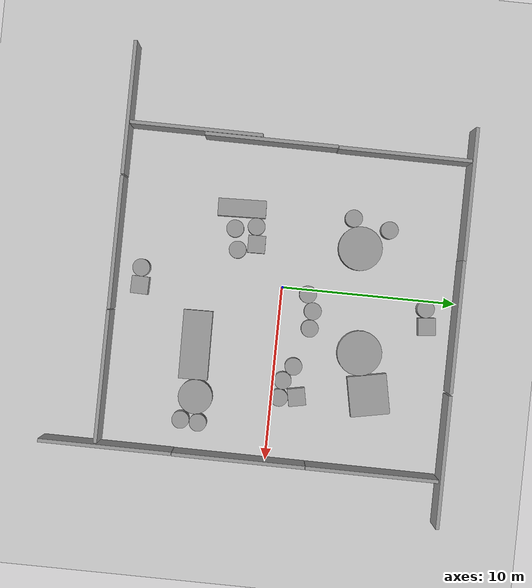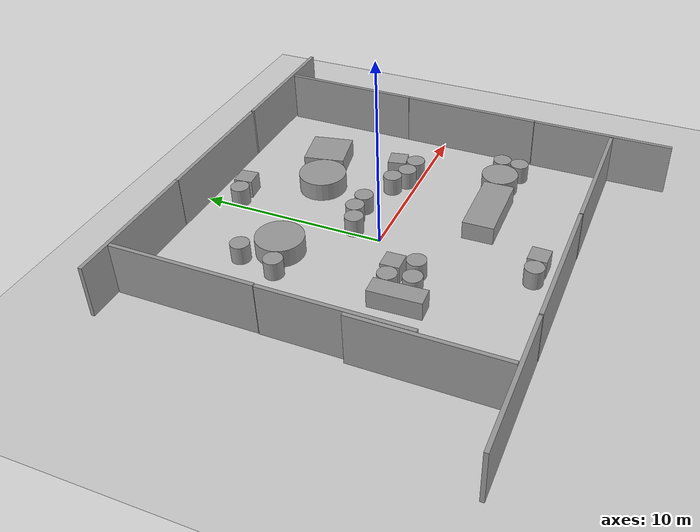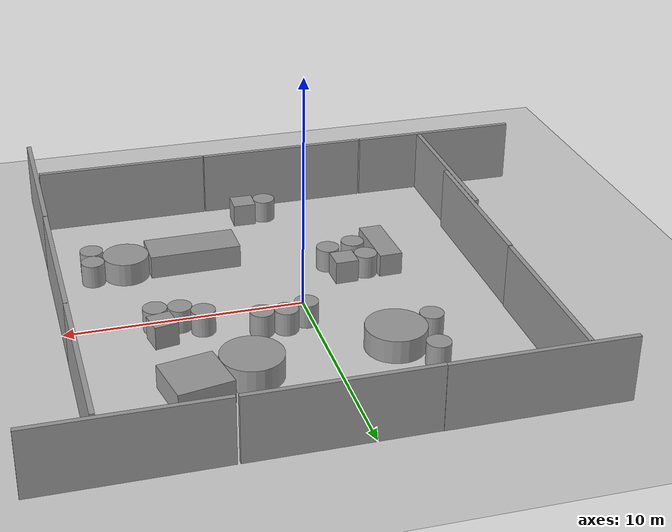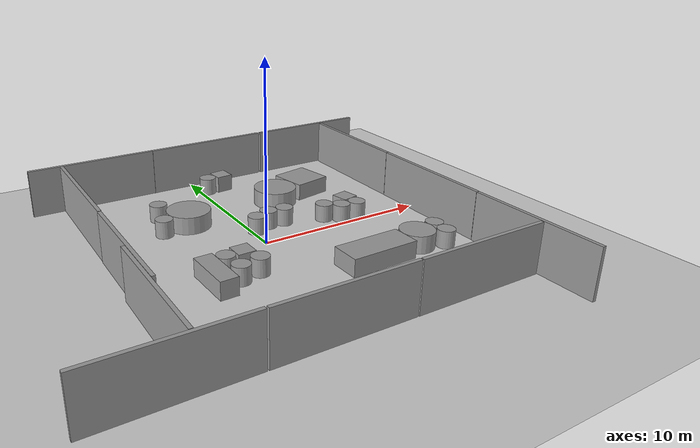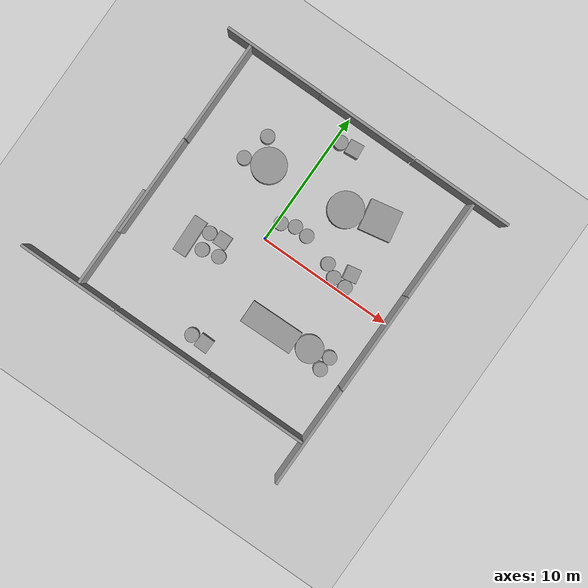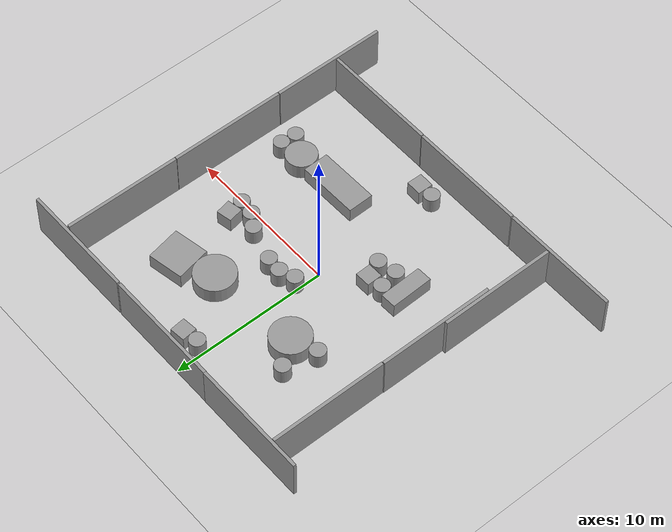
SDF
<sdf version="1.6">
 <world name="default">
  <light name="sun" type="directional">
   <pose>0 0 10 0 -0 0</pose>
   <diffuse>0.8 0.8 0.8 1</diffuse>
   <specular>0.2 0.2 0.2 1</specular>
   <attenuation>
    <range>1000</range>
    <constant>0.9</constant>
    <linear>0.01</linear>
    <quadratic>0.001</quadratic>
   </attenuation>
   <direction>-0.5 0.1 -0.9</direction>
  </light>
  <model name="ground_plane">
   <static>1</static>
   <link name="link">
    <collision name="collision">
     <geometry><plane><normal>0 0 1</normal><size>100 100</size></plane></geometry>
     <surface><friction><ode><mu>100</mu><mu2>50</mu2></ode></friction></surface>
    </collision>
    <visual name="visual">
     <cast_shadows>0</cast_shadows>
     <geometry><plane><normal>0 0 1</normal><size>100 100</size></plane></geometry>
     <material>
      <script><uri>file://media/materials/scripts/gazebo.material</uri><name>Gazebo/Grey</name></script>
     </material>
    </visual>
   </link>
  </model>
  <gravity>0 0 -9.8</gravity>
  <magnetic_field>6e-06 2.3e-05 -4.2e-05</magnetic_field>
  <atmosphere type="adiabatic"/>
  <physics name="default_physics" default="0" type="ode">
   <max_step_size>0.001</max_step_size>
   <real_time_factor>1</real_time_factor>
   <real_time_update_rate>1000</real_time_update_rate>
  </physics>
  <scene><ambient>0.4 0.4 0.4 1</ambient><background>0.7 0.7 0.7 1</background><shadows>1</shadows></scene>
  <spherical_coordinates>
   <surface_model>EARTH_WGS84</surface_model>
   <latitude_deg>0</latitude_deg>
   <longitude_deg>0</longitude_deg>
   <elevation>0</elevation>
   <heading_deg>0</heading_deg>
  </spherical_coordinates>
  <model name="unit_box">
   <pose>5.65714 5.5143 0.499995 4e-06 -0 0.19035</pose>
   <link name="link">
    <inertial>
     <mass>1</mass>
     <inertia>
      <ixx>0.166667</ixx>
      <ixy>0</ixy>
      <ixz>0</ixz>
      <iyy>0.166667</iyy>
      <iyz>0</iyz>
      <izz>0.166667</izz>
     </inertia>
    </inertial>
    <collision name="collision"><geometry><box><size>2.30373 2.24757 1</size></box></geometry></collision>
    <visual name="visual">
     <geometry><box><size>2.30373 2.24757 1</size></box></geometry>
     <material>
      <script><name>Gazebo/Grey</name><uri>file://media/materials/scripts/gazebo.material</uri></script>
     </material>
    </visual>
   </link>
  </model>
  <model name="unit_cylinder">
   <pose>3.31537 4.76057 0.5 0 -0 -0.12174</pose>
   <link name="link">
    <inertial>
     <mass>1</mass>
     <inertia><ixx>0.145833</ixx><ixy>0</ixy><ixz>0</ixz><iyy>0.145833</iyy><iyz>0</iyz><izz>0.125</izz></inertia>
    </inertial>
    <collision name="collision">
     <geometry><cylinder><radius>1.28777</radius><length>1</length></cylinder></geometry>
    </collision>
    <visual name="visual">
     <geometry><cylinder><radius>1.28777</radius><length>1</length></cylinder></geometry>
     <material>
      <script><name>Gazebo/Grey</name><uri>file://media/materials/scripts/gazebo.material</uri></script>
     </material>
    </visual>
   </link>
  </model>
  <model name="unit_cylinder_0">
   <pose>8.18054 -4.03594 0.499992 -3e-06 2e-06 -0.051788</pose>
   <link name="link">
    <inertial>
     <mass>1</mass>
     <inertia><ixx>0.145833</ixx><ixy>0</ixy><ixz>0</ixz><iyy>0.145833</iyy><iyz>0</iyz><izz>0.125</izz></inertia>
    </inertial>
    <collision name="collision">
     <geometry><cylinder><radius>0.5</radius><length>1</length></cylinder></geometry>
    </collision>
    <visual name="visual">
     <geometry><cylinder><radius>0.5</radius><length>1</length></cylinder></geometry>
     <material>
      <script><name>Gazebo/Grey</name><uri>file://media/materials/scripts/gazebo.material</uri></script>
     </material>
    </visual>
   </link>
  </model>
  <model name="unit_cylinder_1">
   <pose>8.107 -5.03946 0.499993 -3e-06 0 -0.231607</pose>
   <link name="link">
    <inertial>
     <mass>1</mass>
     <inertia><ixx>0.145833</ixx><ixy>0</ixy><ixz>0</ixz><iyy>0.145833</iyy><iyz>0</iyz><izz>0.125</izz></inertia>
    </inertial>
    <collision name="collision">
     <geometry><cylinder><radius>0.5</radius><length>1</length></cylinder></geometry>
    </collision>
    <visual name="visual">
     <geometry><cylinder><radius>0.5</radius><length>1</length></cylinder></geometry>
     <material>
      <script><name>Gazebo/Grey</name><uri>file://media/materials/scripts/gazebo.material</uri></script>
     </material>
    </visual>
   </link>
  </model>
  <model name="unit_cylinder_2">
   <pose>6.72401 -4.32637 0.499994 6e-06 -7e-06 0.058713</pose>
   <link name="link">
    <inertial>
     <mass>1</mass>
     <inertia><ixx>0.145833</ixx><ixy>0</ixy><ixz>0</ixz><iyy>0.145833</iyy><iyz>0</iyz><izz>0.125</izz></inertia>
    </inertial>
    <collision name="collision">
     <geometry><cylinder><radius>0.98505</radius><length>1</length></cylinder></geometry>
    </collision>
    <visual name="visual">
     <geometry><cylinder><radius>0.98505</radius><length>1</length></cylinder></geometry>
     <material>
      <script><name>Gazebo/Grey</name><uri>file://media/materials/scripts/gazebo.material</uri></script>
     </material>
    </visual>
   </link>
  </model>
  <model name="unit_box_0">
   <pose>3.7691 -4.60129 0.499996 -5e-06 -0 0.016981</pose>
   <link name="link">
    <inertial>
     <mass>1</mass>
     <inertia>
      <ixx>0.166667</ixx>
      <ixy>0</ixy>
      <ixz>0</ixz>
      <iyy>0.166667</iyy>
      <iyz>0</iyz>
      <izz>0.166667</izz>
     </inertia>
    </inertial>
    <collision name="collision"><geometry><box><size>3.94577 1.66108 1</size></box></geometry></collision>
    <visual name="visual">
     <geometry><box><size>3.94577 1.66108 1</size></box></geometry>
     <material>
      <script><name>Gazebo/Grey</name><uri>file://media/materials/scripts/gazebo.material</uri></script>
     </material>
    </visual>
   </link>
  </model>
  <model name="unit_cylinder_3">
   <pose>4.44991 1.08679 0.499997 3e-06 2e-06 -0.080474</pose>
   <link name="link">
    <inertial>
     <mass>1</mass>
     <inertia><ixx>0.145833</ixx><ixy>0</ixy><ixz>0</ixz><iyy>0.145833</iyy><iyz>0</iyz><izz>0.125</izz></inertia>
    </inertial>
    <collision name="collision">
     <geometry><cylinder><radius>0.5</radius><length>1</length></cylinder></geometry>
    </collision>
    <visual name="visual">
     <geometry><cylinder><radius>0.5</radius><length>1</length></cylinder></geometry>
     <material>
      <script><name>Gazebo/Grey</name><uri>file://media/materials/scripts/gazebo.material</uri></script>
     </material>
    </visual>
   </link>
  </model>
  <model name="unit_cylinder_4">
   <pose>5.30289 0.552838 0.499992 -3e-06 1e-06 -0.21972</pose>
   <link name="link">
    <inertial>
     <mass>1</mass>
     <inertia><ixx>0.145833</ixx><ixy>0</ixy><ixz>0</ixz><iyy>0.145833</iyy><iyz>0</iyz><izz>0.125</izz></inertia>
    </inertial>
    <collision name="collision">
     <geometry><cylinder><radius>0.5</radius><length>1</length></cylinder></geometry>
    </collision>
    <visual name="visual">
     <geometry><cylinder><radius>0.5</radius><length>1</length></cylinder></geometry>
     <material>
      <script><name>Gazebo/Grey</name><uri>file://media/materials/scripts/gazebo.material</uri></script>
     </material>
    </visual>
   </link>
  </model>
  <model name="unit_cylinder_5">
   <pose>-2.63697 4.22043 0.5 0 -0 0.092075</pose>
   <link name="link">
    <inertial>
     <mass>1</mass>
     <inertia><ixx>0.145833</ixx><ixy>0</ixy><ixz>0</ixz><iyy>0.145833</iyy><iyz>0</iyz><izz>0.125</izz></inertia>
    </inertial>
    <collision name="collision">
     <geometry><cylinder><radius>1.26239</radius><length>1</length></cylinder></geometry>
    </collision>
    <visual name="visual">
     <geometry><cylinder><radius>1.26239</radius><length>1</length></cylinder></geometry>
     <material>
      <script><name>Gazebo/Grey</name><uri>file://media/materials/scripts/gazebo.material</uri></script>
     </material>
    </visual>
   </link>
  </model>
  <model name="unit_cylinder_6">
   <pose>-4.31548 3.68272 0.499992 -2e-06 -5e-06 -0.314851</pose>
   <link name="link">
    <inertial>
     <mass>1</mass>
     <inertia><ixx>0.145833</ixx><ixy>0</ixy><ixz>0</ixz><iyy>0.145833</iyy><iyz>0</iyz><izz>0.125</izz></inertia>
    </inertial>
    <collision name="collision">
     <geometry><cylinder><radius>0.5</radius><length>1</length></cylinder></geometry>
    </collision>
    <visual name="visual">
     <geometry><cylinder><radius>0.5</radius><length>1</length></cylinder></geometry>
     <material>
      <script><name>Gazebo/Grey</name><uri>file://media/materials/scripts/gazebo.material</uri></script>
     </material>
    </visual>
   </link>
  </model>
  <model name="unit_box_2">
   <pose>-2.29358 -1.70504 0.499995 1e-05 -0 0.02131</pose>
   <link name="link">
    <inertial>
     <mass>1</mass>
     <inertia>
      <ixx>0.166667</ixx>
      <ixy>0</ixy>
      <ixz>0</ixz>
      <iyy>0.166667</iyy>
      <iyz>0</iyz>
      <izz>0.166667</izz>
     </inertia>
    </inertial>
    <collision name="collision"><geometry><box><size>1 1 1</size></box></geometry></collision>
    <visual name="visual">
     <geometry><box><size>1 1 1</size></box></geometry>
     <material>
      <script><name>Gazebo/Grey</name><uri>file://media/materials/scripts/gazebo.material</uri></script>
     </material>
    </visual>
   </link>
  </model>
  <model name="unit_cylinder_7">
   <pose>-3.2938 -1.81131 0.499995 1e-06 2e-06 -0.335832</pose>
   <link name="link">
    <inertial>
     <mass>1</mass>
     <inertia><ixx>0.145833</ixx><ixy>0</ixy><ixz>0</ixz><iyy>0.145833</iyy><iyz>0</iyz><izz>0.125</izz></inertia>
    </inertial>
    <collision name="collision">
     <geometry><cylinder><radius>0.5</radius><length>1</length></cylinder></geometry>
    </collision>
    <visual name="visual">
     <geometry><cylinder><radius>0.5</radius><length>1</length></cylinder></geometry>
     <material>
      <script><name>Gazebo/Grey</name><uri>file://media/materials/scripts/gazebo.material</uri></script>
     </material>
    </visual>
   </link>
  </model>
  <model name="unit_cylinder_8">
   <pose>-3.06816 -3.01286 0.499997 5e-06 2e-06 0.288514</pose>
   <link name="link">
    <inertial>
     <mass>1</mass>
     <inertia><ixx>0.145833</ixx><ixy>0</ixy><ixz>0</ixz><iyy>0.145833</iyy><iyz>0</iyz><izz>0.125</izz></inertia>
    </inertial>
    <collision name="collision">
     <geometry><cylinder><radius>0.5</radius><length>1</length></cylinder></geometry>
    </collision>
    <visual name="visual">
     <geometry><cylinder><radius>0.5</radius><length>1</length></cylinder></geometry>
     <material>
      <script><name>Gazebo/Grey</name><uri>file://media/materials/scripts/gazebo.material</uri></script>
     </material>
    </visual>
   </link>
  </model>
  <model name="unit_cylinder_9">
   <pose>-1.87743 -2.75516 0.499997 4e-06 1e-06 0.243072</pose>
   <link name="link">
    <inertial>
     <mass>1</mass>
     <inertia><ixx>0.145833</ixx><ixy>0</ixy><ixz>0</ixz><iyy>0.145833</iyy><iyz>0</iyz><izz>0.125</izz></inertia>
    </inertial>
    <collision name="collision">
     <geometry><cylinder><radius>0.5</radius><length>1</length></cylinder></geometry>
    </collision>
    <visual name="visual">
     <geometry><cylinder><radius>0.5</radius><length>1</length></cylinder></geometry>
     <material>
      <script><name>Gazebo/Grey</name><uri>file://media/materials/scripts/gazebo.material</uri></script>
     </material>
    </visual>
   </link>
  </model>
  <model name="unit_cylinder_10">
   <pose>-3.84579 5.77987 0.500664 0.000918 0.000969 0.075062</pose>
   <link name="link">
    <inertial>
     <mass>1</mass>
     <inertia><ixx>0.145833</ixx><ixy>0</ixy><ixz>0</ixz><iyy>0.145833</iyy><iyz>0</iyz><izz>0.125</izz></inertia>
    </inertial>
    <collision name="collision">
     <geometry><cylinder><radius>0.5</radius><length>1</length></cylinder></geometry>
    </collision>
    <visual name="visual">
     <geometry><cylinder><radius>0.5</radius><length>1</length></cylinder></geometry>
     <material>
      <script><name>Gazebo/Grey</name><uri>file://media/materials/scripts/gazebo.material</uri></script>
     </material>
    </visual>
   </link>
  </model>
  <model name="unit_box_3">
   <pose>1.4331 8.44366 0.5 0 -0 0.104018</pose>
   <link name="link">
    <inertial>
     <mass>1</mass>
     <inertia>
      <ixx>0.166667</ixx>
      <ixy>0</ixy>
      <ixz>0</ixz>
      <iyy>0.166667</iyy>
      <iyz>0</iyz>
      <izz>0.166667</izz>
     </inertia>
    </inertial>
    <collision name="collision"><geometry><box><size>1 1 1</size></box></geometry></collision>
    <visual name="visual">
     <geometry><box><size>1 1 1</size></box></geometry>
     <material>
      <script><name>Gazebo/Grey</name><uri>file://media/materials/scripts/gazebo.material</uri></script>
     </material>
    </visual>
   </link>
  </model>
  <model name="unit_cylinder_11">
   <pose>0.437871 8.27917 0.499994 -4e-06 -3e-06 -0.011092</pose>
   <link name="link">
    <inertial>
     <mass>1</mass>
     <inertia><ixx>0.145833</ixx><ixy>0</ixy><ixz>0</ixz><iyy>0.145833</iyy><iyz>0</iyz><izz>0.125</izz></inertia>
    </inertial>
    <collision name="collision">
     <geometry><cylinder><radius>0.5</radius><length>1</length></cylinder></geometry>
    </collision>
    <visual name="visual">
     <geometry><cylinder><radius>0.5</radius><length>1</length></cylinder></geometry>
     <material>
      <script><name>Gazebo/Grey</name><uri>file://media/materials/scripts/gazebo.material</uri></script>
     </material>
    </visual>
   </link>
  </model>
  <model name="unit_box_5">
   <pose>0.680368 -8.11468 0.499995 -1e-05 -0 -0.023017</pose>
   <link name="link">
    <inertial>
     <mass>1</mass>
     <inertia>
      <ixx>0.166667</ixx>
      <ixy>0</ixy>
      <ixz>0</ixz>
      <iyy>0.166667</iyy>
      <iyz>0</iyz>
      <izz>0.166667</izz>
     </inertia>
    </inertial>
    <collision name="collision"><geometry><box><size>1 1 1</size></box></geometry></collision>
    <visual name="visual">
     <geometry><box><size>1 1 1</size></box></geometry>
     <material>
      <script><name>Gazebo/Grey</name><uri>file://media/materials/scripts/gazebo.material</uri></script>
     </material>
    </visual>
   </link>
  </model>
  <model name="unit_cylinder_12">
   <pose>-0.320217 -8.12802 0.499992 -3e-06 3e-06 0.050019</pose>
   <link name="link">
    <inertial>
     <mass>1</mass>
     <inertia><ixx>0.145833</ixx><ixy>0</ixy><ixz>0</ixz><iyy>0.145833</iyy><iyz>0</iyz><izz>0.125</izz></inertia>
    </inertial>
    <collision name="collision">
     <geometry><cylinder><radius>0.5</radius><length>1</length></cylinder></geometry>
    </collision>
    <visual name="visual">
     <geometry><cylinder><radius>0.5</radius><length>1</length></cylinder></geometry>
     <material>
      <script><name>Gazebo/Grey</name><uri>file://media/materials/scripts/gazebo.material</uri></script>
     </material>
    </visual>
   </link>
  </model>
  <model name="unit_cylinder_13">
   <pose>1.19996 1.86974 0.499994 -4e-06 -2e-06 0.033938</pose>
   <link name="link">
    <inertial>
     <mass>1</mass>
     <inertia><ixx>0.145833</ixx><ixy>0</ixy><ixz>0</ixz><iyy>0.145833</iyy><iyz>0</iyz><izz>0.125</izz></inertia>
    </inertial>
    <collision name="collision">
     <geometry><cylinder><radius>0.5</radius><length>1</length></cylinder></geometry>
    </collision>
    <visual name="visual">
     <geometry><cylinder><radius>0.5</radius><length>1</length></cylinder></geometry>
     <material>
      <script><name>Gazebo/Grey</name><uri>file://media/materials/scripts/gazebo.material</uri></script>
     </material>
    </visual>
   </link>
  </model>
  <model name="unit_cylinder_14">
   <pose>6.29744 0.441139 0.499999 0 -0 0.130272</pose>
   <link name="link">
    <inertial>
     <mass>1</mass>
     <inertia><ixx>0.145833</ixx><ixy>0</ixy><ixz>0</ixz><iyy>0.145833</iyy><iyz>0</iyz><izz>0.125</izz></inertia>
    </inertial>
    <collision name="collision">
     <geometry><cylinder><radius>0.5</radius><length>1</length></cylinder></geometry>
    </collision>
    <visual name="visual">
     <geometry><cylinder><radius>0.5</radius><length>1</length></cylinder></geometry>
     <material>
      <script><name>Gazebo/Grey</name><uri>file://media/materials/scripts/gazebo.material</uri></script>
     </material>
    </visual>
   </link>
  </model>
  <model name="unit_box_6">
   <pose>6.16981 1.43538 0.499998 1e-06 -4e-06 0.191501</pose>
   <link name="link">
    <inertial>
     <mass>1</mass>
     <inertia>
      <ixx>0.166667</ixx>
      <ixy>0</ixy>
      <ixz>0</ixz>
      <iyy>0.166667</iyy>
      <iyz>0</iyz>
      <izz>0.166667</izz>
     </inertia>
    </inertial>
    <collision name="collision"><geometry><box><size>1 1 1</size></box></geometry></collision>
    <visual name="visual">
     <geometry><box><size>1 1 1</size></box></geometry>
     <material>
      <script><name>Gazebo/Grey</name><uri>file://media/materials/scripts/gazebo.material</uri></script>
     </material>
    </visual>
   </link>
  </model>
  <model name="unit_cylinder_15">
   <pose>2.19725 1.79571 0.499992 -3e-06 -4e-06 -0.064277</pose>
   <link name="link">
    <inertial>
     <mass>1</mass>
     <inertia><ixx>0.145833</ixx><ixy>0</ixy><ixz>0</ixz><iyy>0.145833</iyy><iyz>0</iyz><izz>0.125</izz></inertia>
    </inertial>
    <collision name="collision">
     <geometry><cylinder><radius>0.5</radius><length>1</length></cylinder></geometry>
    </collision>
    <visual name="visual">
     <geometry><cylinder><radius>0.5</radius><length>1</length></cylinder></geometry>
     <material>
      <script><name>Gazebo/Grey</name><uri>file://media/materials/scripts/gazebo.material</uri></script>
     </material>
    </visual>
   </link>
  </model>
  <model name="unit_cylinder_16">
   <pose>0.266796 1.50613 0.499994 -4e-06 -2e-06 0.098161</pose>
   <link name="link">
    <inertial>
     <mass>1</mass>
     <inertia><ixx>0.145833</ixx><ixy>0</ixy><ixz>0</ixz><iyy>0.145833</iyy><iyz>0</iyz><izz>0.125</izz></inertia>
    </inertial>
    <collision name="collision">
     <geometry><cylinder><radius>0.5</radius><length>1</length></cylinder></geometry>
    </collision>
    <visual name="visual">
     <geometry><cylinder><radius>0.5</radius><length>1</length></cylinder></geometry>
     <material>
      <script><name>Gazebo/Grey</name><uri>file://media/materials/scripts/gazebo.material</uri></script>
     </material>
    </visual>
   </link>
  </model>
  <model name="unit_box_1">
   <pose>-4.26473 -2.73126 0.5 0 -0 0.03216</pose>
   <link name="link">
    <inertial>
     <mass>1</mass>
     <inertia>
      <ixx>0.166667</ixx>
      <ixy>0</ixy>
      <ixz>0</ixz>
      <iyy>0.166667</iyy>
      <iyz>0</iyz>
      <izz>0.166667</izz>
     </inertia>
    </inertial>
    <collision name="collision"><geometry><box><size>1 2.75633 1</size></box></geometry></collision>
    <visual name="visual">
     <geometry><box><size>1 2.75633 1</size></box></geometry>
     <material>
      <script><name>Gazebo/Grey</name><uri>file://media/materials/scripts/gazebo.material</uri></script>
     </material>
    </visual>
   </link>
  </model>
  <model name="grey_wall">
   <static>1</static>
   <link name="link">
    <pose>0 0 1.4 0 -0 0</pose>
    <collision name="collision"><geometry><box><size>7.5 0.2 2.8</size></box></geometry></collision>
    <visual name="visual">
     <cast_shadows>0</cast_shadows>
     <geometry><box><size>7.5 0.2 2.8</size></box></geometry>
     <material>
      <script>
       <uri>model://grey_wall/materials/scripts</uri>
       <uri>model://grey_wall/materials/textures</uri>
       <name>vrc/grey_wall</name>
      </script>
     </material>
    </visual>
   </link>
   <pose>-6.23484 9.97826 0 0 -0 0</pose>
  </model>
  <model name="grey_wall_clone">
   <static>1</static>
   <link name="link">
    <pose>0 0 1.4 0 -0 0</pose>
    <collision name="collision"><geometry><box><size>7.5 0.2 2.8</size></box></geometry></collision>
    <visual name="visual">
     <cast_shadows>0</cast_shadows>
     <geometry><box><size>7.5 0.2 2.8</size></box></geometry>
     <material>
      <script>
       <uri>model://grey_wall/materials/scripts</uri>
       <uri>model://grey_wall/materials/textures</uri>
       <name>vrc/grey_wall</name>
      </script>
     </material>
    </visual>
   </link>
   <pose>1.25524 9.96251 0 0 -0 0</pose>
  </model>
  <model name="grey_wall_clone_0">
   <static>1</static>
   <link name="link">
    <pose>0 0 1.4 0 -0 0</pose>
    <collision name="collision"><geometry><box><size>7.5 0.2 2.8</size></box></geometry></collision>
    <visual name="visual">
     <cast_shadows>0</cast_shadows>
     <geometry><box><size>7.5 0.2 2.8</size></box></geometry>
     <material>
      <script>
       <uri>model://grey_wall/materials/scripts</uri>
       <uri>model://grey_wall/materials/textures</uri>
       <name>vrc/grey_wall</name>
      </script>
     </material>
    </visual>
   </link>
   <pose>8.86758 9.95664 0 0 -0 0</pose>
  </model>
  <model name="grey_wall_clone_1">
   <static>1</static>
   <link name="link">
    <pose>0 0 1.4 0 -0 0</pose>
    <collision name="collision"><geometry><box><size>7.5 0.2 2.8</size></box></geometry></collision>
    <visual name="visual">
     <cast_shadows>0</cast_shadows>
     <geometry><box><size>7.5 0.2 2.8</size></box></geometry>
     <material>
      <script>
       <uri>model://grey_wall/materials/scripts</uri>
       <uri>model://grey_wall/materials/textures</uri>
       <name>vrc/grey_wall</name>
      </script>
     </material>
    </visual>
   </link>
   <pose>9.94117 6.01216 0 0 0 -1.57318</pose>
  </model>
  <model name="grey_wall_clone_1_clone">
   <static>1</static>
   <link name="link">
    <pose>0 0 1.4 0 -0 0</pose>
    <collision name="collision"><geometry><box><size>7.5 0.2 2.8</size></box></geometry></collision>
    <visual name="visual">
     <cast_shadows>0</cast_shadows>
     <geometry><box><size>7.5 0.2 2.8</size></box></geometry>
     <material>
      <script>
       <uri>model://grey_wall/materials/scripts</uri>
       <uri>model://grey_wall/materials/textures</uri>
       <name>vrc/grey_wall</name>
      </script>
     </material>
    </visual>
   </link>
   <pose>9.92003 -1.50425 0 0 0 -1.57318</pose>
  </model>
  <model name="grey_wall_clone_1_clone_0">
   <static>1</static>
   <link name="link">
    <pose>0 0 1.4 0 -0 0</pose>
    <collision name="collision"><geometry><box><size>7.5 0.2 2.8</size></box></geometry></collision>
    <visual name="visual">
     <cast_shadows>0</cast_shadows>
     <geometry><box><size>7.5 0.2 2.8</size></box></geometry>
     <material>
      <script>
       <uri>model://grey_wall/materials/scripts</uri>
       <uri>model://grey_wall/materials/textures</uri>
       <name>vrc/grey_wall</name>
      </script>
     </material>
    </visual>
   </link>
   <pose>9.88797 -9.03415 0 0 0 -1.57318</pose>
  </model>
  <model name="grey_wall_clone_0_clone">
   <static>1</static>
   <link name="link">
    <pose>0 0 1.4 0 -0 0</pose>
    <collision name="collision"><geometry><box><size>7.5 0.2 2.8</size></box></geometry></collision>
    <visual name="visual">
     <cast_shadows>0</cast_shadows>
     <geometry><box><size>7.5 0.2 2.8</size></box></geometry>
     <material>
      <script>
       <uri>model://grey_wall/materials/scripts</uri>
       <uri>model://grey_wall/materials/textures</uri>
       <name>vrc/grey_wall</name>
      </script>
     </material>
    </visual>
   </link>
   <pose>5.97495 -9.57804 0 0 -0 0</pose>
  </model>
  <model name="grey_wall_clone_0_clone_0">
   <static>1</static>
   <link name="link">
    <pose>0 0 1.4 0 -0 0</pose>
    <collision name="collision"><geometry><box><size>7.5 0.2 2.8</size></box></geometry></collision>
    <visual name="visual">
     <cast_shadows>0</cast_shadows>
     <geometry><box><size>7.5 0.2 2.8</size></box></geometry>
     <material>
      <script>
       <uri>model://grey_wall/materials/scripts</uri>
       <uri>model://grey_wall/materials/textures</uri>
       <name>vrc/grey_wall</name>
      </script>
     </material>
    </visual>
   </link>
   <pose>-1.58162 -9.56528 0 0 -0 0</pose>
  </model>
  <model name="grey_wall_clone_0_clone_1">
   <static>1</static>
   <link name="link">
    <pose>0 0 1.4 0 -0 0</pose>
    <collision name="collision"><geometry><box><size>7.5 0.2 2.8</size></box></geometry></collision>
    <visual name="visual">
     <cast_shadows>0</cast_shadows>
     <geometry><box><size>7.5 0.2 2.8</size></box></geometry>
     <material>
      <script>
       <uri>model://grey_wall/materials/scripts</uri>
       <uri>model://grey_wall/materials/textures</uri>
       <name>vrc/grey_wall</name>
      </script>
     </material>
    </visual>
   </link>
   <pose>-9.16399 -9.55856 0 0 -0 0</pose>
  </model>
  <model name="grey_wall_clone_1_clone_1">
   <static>1</static>
   <link name="link">
    <pose>0 0 1.4 0 -0 0</pose>
    <collision name="collision"><geometry><box><size>7.5 0.2 2.8</size></box></geometry></collision>
    <visual name="visual">
     <cast_shadows>0</cast_shadows>
     <geometry><box><size>7.5 0.2 2.8</size></box></geometry>
     <material>
      <script>
       <uri>model://grey_wall/materials/scripts</uri>
       <uri>model://grey_wall/materials/textures</uri>
       <name>vrc/grey_wall</name>
      </script>
     </material>
    </visual>
   </link>
   <pose>-8.0893 6.1115 0 0 0 -1.57318</pose>
  </model>
  <model name="grey_wall_clone_1_clone_2">
   <static>1</static>
   <link name="link">
    <pose>0 0 1.4 0 -0 0</pose>
    <collision name="collision"><geometry><box><size>7.5 0.2 2.8</size></box></geometry></collision>
    <visual name="visual">
     <cast_shadows>0</cast_shadows>
     <geometry><box><size>7.5 0.2 2.8</size></box></geometry>
     <material>
      <script>
       <uri>model://grey_wall/materials/scripts</uri>
       <uri>model://grey_wall/materials/textures</uri>
       <name>vrc/grey_wall</name>
      </script>
     </material>
    </visual>
   </link>
   <pose>-8.13442 -1.43302 0 0 0 -1.57318</pose>
  </model>
  <model name="grey_wall_clone_1_clone_2_clone">
   <static>1</static>
   <link name="link">
    <pose>0 0 1.4 0 -0 0</pose>
    <collision name="collision"><geometry><box><size>7.5 0.2 2.8</size></box></geometry></collision>
    <visual name="visual">
     <cast_shadows>0</cast_shadows>
     <geometry><box><size>7.5 0.2 2.8</size></box></geometry>
     <material>
      <script>
       <uri>model://grey_wall/materials/scripts</uri>
       <uri>model://grey_wall/materials/textures</uri>
       <name>vrc/grey_wall</name>
      </script>
     </material>
    </visual>
   </link>
   <pose>-8.35303 -5.68312 0 0 0 -1.57318</pose>
  </model>
 </world>
</sdf>
